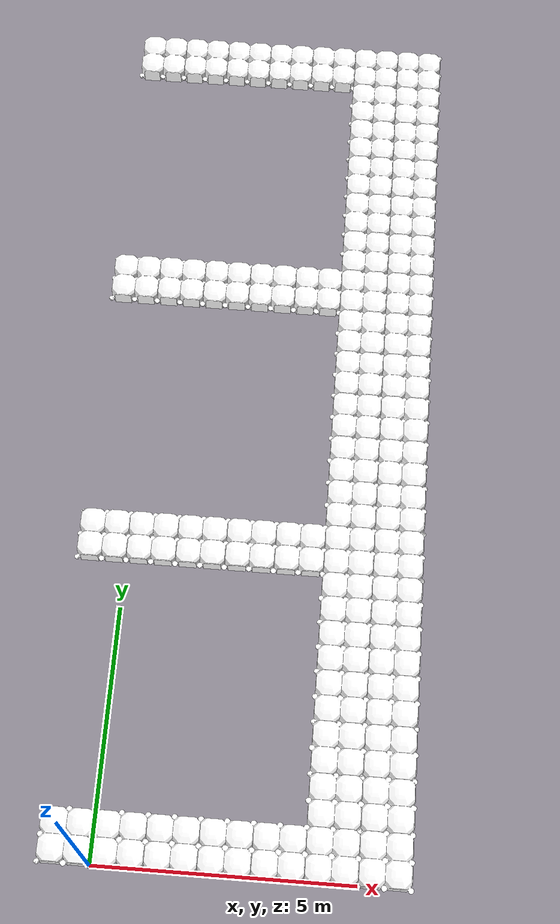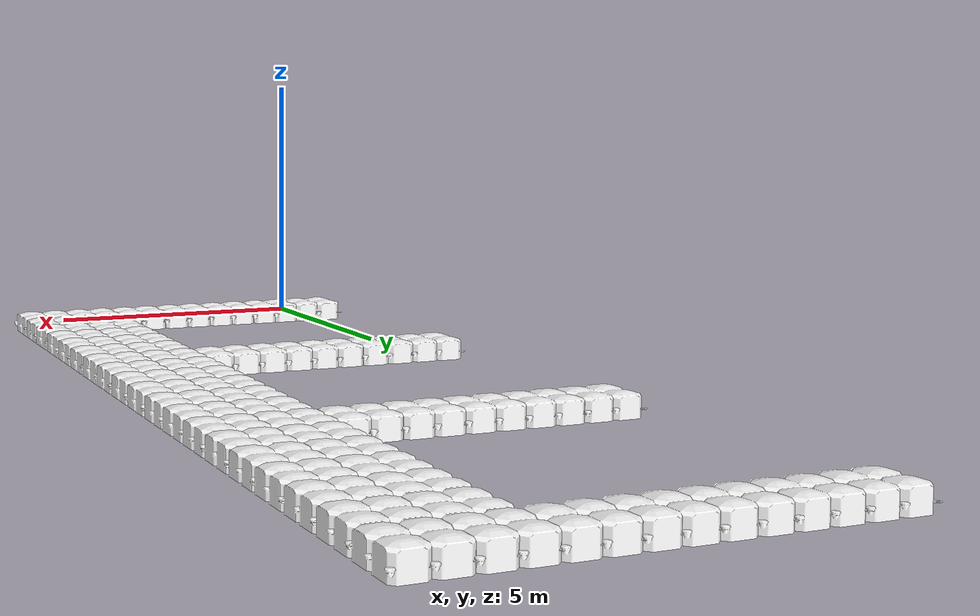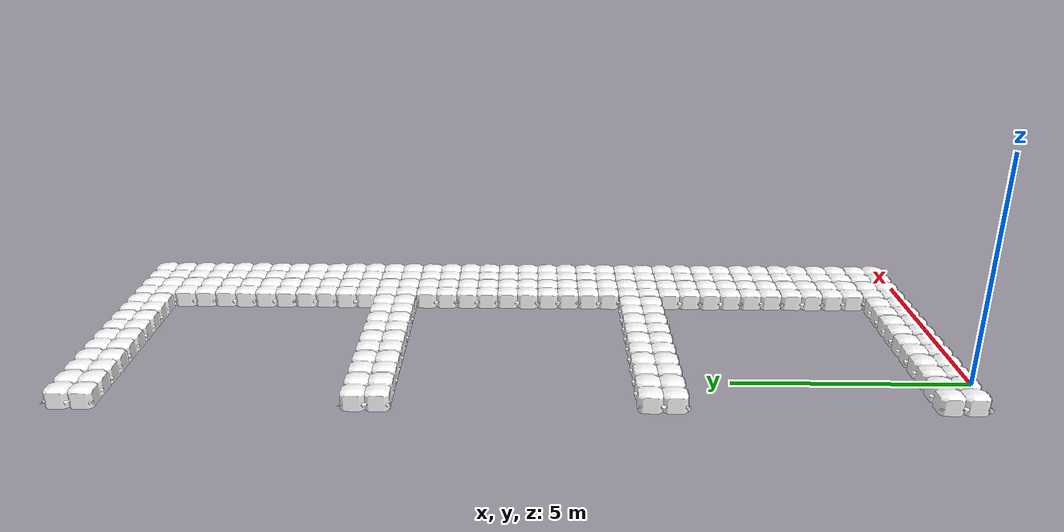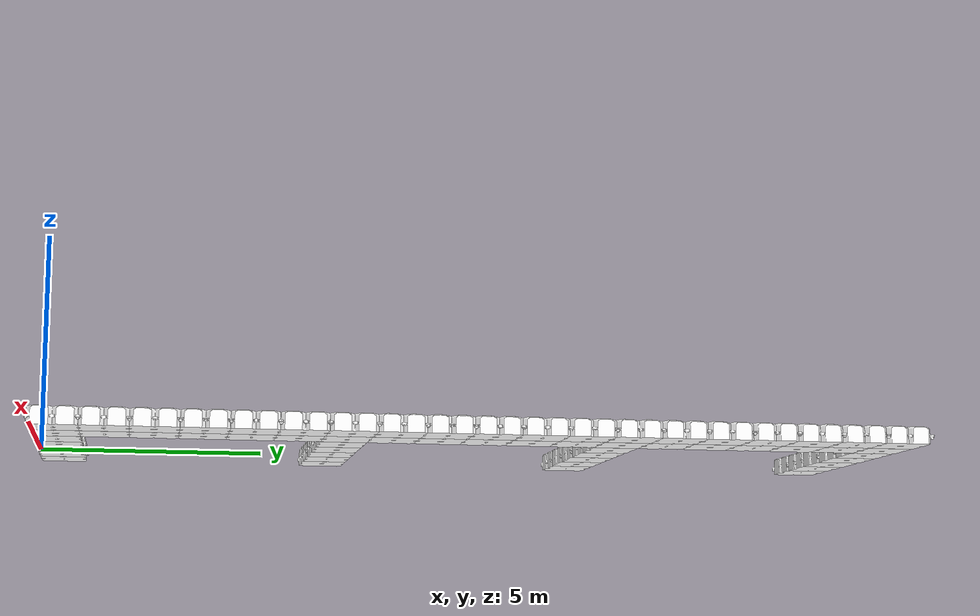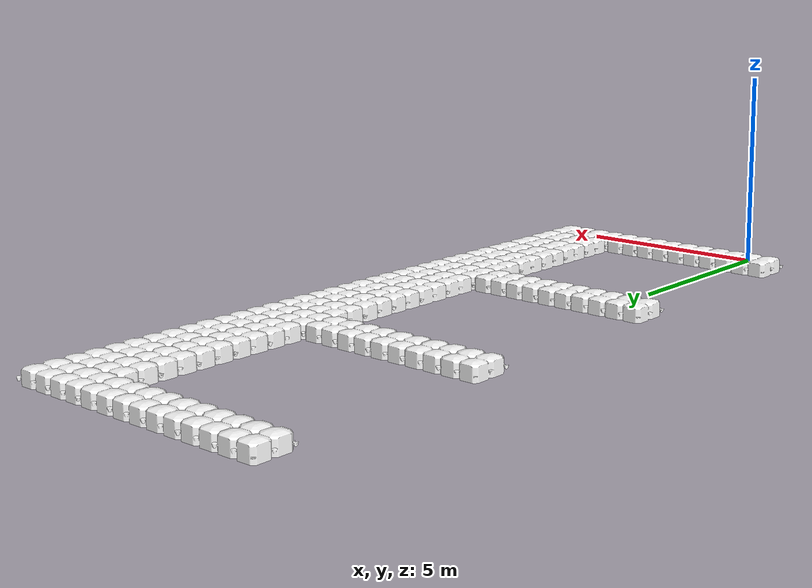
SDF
<?xml version="1.0" ?>
<sdf version="1.6">

  <!-- Important: This file is generated. DO NOT EDIT! -->

  <model name="robotx_dock_2024_base">
    <selfCollide>true</selfCollide>

    <static>true</static>

    <!-- Row 0 -->
    <include>
      <name>dock_block_0_0</name>
      <pose>0 0 0.25 0 0 0</pose>
      <uri>dock_block_2x2</uri>
    </include>
    <include>
      <name>dock_block_0_3</name>
      <pose>0 6 0.25 0 0 0</pose>
      <uri>dock_block_2x2</uri>
    </include>
    <include>
      <name>dock_block_0_6</name>
      <pose>0 12 0.25 0 0 0</pose>
      <uri>dock_block_2x2</uri>
    </include>
    <include>
      <name>dock_block_0_9</name>
      <pose>0 18 0.25 0 0 0</pose>
      <uri>dock_block_2x2</uri>
    </include>

    <!-- Row 1 -->
    <include>
      <name>dock_block_1_0</name>
      <pose>1 0 0.25 0 0 0</pose>
      <uri>dock_block_2x2</uri>
    </include>
    <include>
      <name>dock_block_1_3</name>
      <pose>1 6 0.25 0 0 0</pose>
      <uri>dock_block_2x2</uri>
    </include>
    <include>
      <name>dock_block_1_6</name>
      <pose>1 12 0.25 0 0 0</pose>
      <uri>dock_block_2x2</uri>
    </include>
    <include>
      <name>dock_block_1_9</name>
      <pose>1 18 0.25 0 0 0</pose>
      <uri>dock_block_2x2</uri>
    </include>

    <!-- Row 2 -->
    <include>
      <name>dock_block_2_0</name>
      <pose>2 0 0.25 0 0 0</pose>
      <uri>dock_block_2x2</uri>
    </include>
    <include>
      <name>dock_block_2_3</name>
      <pose>2 6 0.25 0 0 0</pose>
      <uri>dock_block_2x2</uri>
    </include>
    <include>
      <name>dock_block_2_6</name>
      <pose>2 12 0.25 0 0 0</pose>
      <uri>dock_block_2x2</uri>
    </include>
    <include>
      <name>dock_block_2_9</name>
      <pose>2 18 0.25 0 0 0</pose>
      <uri>dock_block_2x2</uri>
    </include>

    <!-- Row 3 -->
    <include>
      <name>dock_block_3_0</name>
      <pose>3 0 0.25 0 0 0</pose>
      <uri>dock_block_2x2</uri>
    </include>
    <include>
      <name>dock_block_3_3</name>
      <pose>3 6 0.25 0 0 0</pose>
      <uri>dock_block_2x2</uri>
    </include>
    <include>
      <name>dock_block_3_6</name>
      <pose>3 12 0.25 0 0 0</pose>
      <uri>dock_block_2x2</uri>
    </include>
    <include>
      <name>dock_block_3_9</name>
      <pose>3 18 0.25 0 0 0</pose>
      <uri>dock_block_2x2</uri>
    </include>

    <!-- Row 4 -->
    <include>
      <name>dock_block_4_0</name>
      <pose>4 0 0.25 0 0 0</pose>
      <uri>dock_block_2x2</uri>
    </include>
    <include>
      <name>dock_block_4_3</name>
      <pose>4 6 0.25 0 0 0</pose>
      <uri>dock_block_2x2</uri>
    </include>
    <include>
      <name>dock_block_4_6</name>
      <pose>4 12 0.25 0 0 0</pose>
      <uri>dock_block_2x2</uri>
    </include>
    <include>
      <name>dock_block_4_9</name>
      <pose>4 18 0.25 0 0 0</pose>
      <uri>dock_block_2x2</uri>
    </include>

    <!-- Row 5 -->
    <include>
      <name>dock_block_5_0</name>
      <pose>5 0 0.25 0 0 0</pose>
      <uri>dock_block_2x2</uri>
    </include>
    <include>
      <name>dock_block_5_1</name>
      <pose>5 1 0.25 0 0 0</pose>
      <uri>dock_block_2x2</uri>
    </include>
    <include>
      <name>dock_block_5_2</name>
      <pose>5 2 0.25 0 0 0</pose>
      <uri>dock_block_2x2</uri>
    </include>
    <include>
      <name>dock_block_5_3</name>
      <pose>5 3 0.25 0 0 0</pose>
      <uri>dock_block_2x2</uri>
    </include>
    <include>
      <name>dock_block_5_4</name>
      <pose>5 4 0.25 0 0 0</pose>
      <uri>dock_block_2x2</uri>
    </include>
    <include>
      <name>dock_block_5_5</name>
      <pose>5 5 0.25 0 0 0</pose>
      <uri>dock_block_2x2</uri>
    </include>
    <include>
      <name>dock_block_5_6</name>
      <pose>5 6 0.25 0 0 0</pose>
      <uri>dock_block_2x2</uri>
    </include>
    <include>
      <name>dock_block_5_7</name>
      <pose>5 7 0.25 0 0 0</pose>
      <uri>dock_block_2x2</uri>
    </include>
    <include>
      <name>dock_block_5_8</name>
      <pose>5 8 0.25 0 0 0</pose>
      <uri>dock_block_2x2</uri>
    </include>
    <include>
      <name>dock_block_5_9</name>
      <pose>5 9 0.25 0 0 0</pose>
      <uri>dock_block_2x2</uri>
    </include>
    <include>
      <name>dock_block_5_10</name>
      <pose>5 10 0.25 0 0 0</pose>
      <uri>dock_block_2x2</uri>
    </include>
    <include>
      <name>dock_block_5_11</name>
      <pose>5 11 0.25 0 0 0</pose>
      <uri>dock_block_2x2</uri>
    </include>
    <include>
      <name>dock_block_5_12</name>
      <pose>5 12 0.25 0 0 0</pose>
      <uri>dock_block_2x2</uri>
    </include>
    <include>
      <name>dock_block_5_13</name>
      <pose>5 13 0.25 0 0 0</pose>
      <uri>dock_block_2x2</uri>
    </include>
    <include>
      <name>dock_block_5_14</name>
      <pose>5 14 0.25 0 0 0</pose>
      <uri>dock_block_2x2</uri>
    </include>
    <include>
      <name>dock_block_5_15</name>
      <pose>5 15 0.25 0 0 0</pose>
      <uri>dock_block_2x2</uri>
    </include>
    <include>
      <name>dock_block_5_16</name>
      <pose>5 16 0.25 0 0 0</pose>
      <uri>dock_block_2x2</uri>
    </include>
    <include>
      <name>dock_block_5_17</name>
      <pose>5 17 0.25 0 0 0</pose>
      <uri>dock_block_2x2</uri>
    </include>
    <include>
      <name>dock_block_5_18</name>
      <pose>5 18 0.25 0 0 0</pose>
      <uri>dock_block_2x2</uri>
    </include>

    <!-- Row 6 -->
    <include>
      <name>dock_block_6_0</name>
      <pose>6 0 0.25 0 0 0</pose>
      <uri>dock_block_2x2</uri>
    </include>
    <include>
      <name>dock_block_6_1</name>
      <pose>6 1 0.25 0 0 0</pose>
      <uri>dock_block_2x2</uri>
    </include>
    <include>
      <name>dock_block_6_2</name>
      <pose>6 2 0.25 0 0 0</pose>
      <uri>dock_block_2x2</uri>
    </include>
    <include>
      <name>dock_block_6_3</name>
      <pose>6 3 0.25 0 0 0</pose>
      <uri>dock_block_2x2</uri>
    </include>
    <include>
      <name>dock_block_6_4</name>
      <pose>6 4 0.25 0 0 0</pose>
      <uri>dock_block_2x2</uri>
    </include>
    <include>
      <name>dock_block_6_5</name>
      <pose>6 5 0.25 0 0 0</pose>
      <uri>dock_block_2x2</uri>
    </include>
    <include>
      <name>dock_block_6_6</name>
      <pose>6 6 0.25 0 0 0</pose>
      <uri>dock_block_2x2</uri>
    </include>
    <include>
      <name>dock_block_6_7</name>
      <pose>6 7 0.25 0 0 0</pose>
      <uri>dock_block_2x2</uri>
    </include>
    <include>
      <name>dock_block_6_8</name>
      <pose>6 8 0.25 0 0 0</pose>
      <uri>dock_block_2x2</uri>
    </include>
    <include>
      <name>dock_block_6_9</name>
      <pose>6 9 0.25 0 0 0</pose>
      <uri>dock_block_2x2</uri>
    </include>
    <include>
      <name>dock_block_6_10</name>
      <pose>6 10 0.25 0 0 0</pose>
      <uri>dock_block_2x2</uri>
    </include>
    <include>
      <name>dock_block_6_11</name>
      <pose>6 11 0.25 0 0 0</pose>
      <uri>dock_block_2x2</uri>
    </include>
    <include>
      <name>dock_block_6_12</name>
      <pose>6 12 0.25 0 0 0</pose>
      <uri>dock_block_2x2</uri>
    </include>
    <include>
      <name>dock_block_6_13</name>
      <pose>6 13 0.25 0 0 0</pose>
      <uri>dock_block_2x2</uri>
    </include>
    <include>
      <name>dock_block_6_14</name>
      <pose>6 14 0.25 0 0 0</pose>
      <uri>dock_block_2x2</uri>
    </include>
    <include>
      <name>dock_block_6_15</name>
      <pose>6 15 0.25 0 0 0</pose>
      <uri>dock_block_2x2</uri>
    </include>
    <include>
      <name>dock_block_6_16</name>
      <pose>6 16 0.25 0 0 0</pose>
      <uri>dock_block_2x2</uri>
    </include>
    <include>
      <name>dock_block_6_17</name>
      <pose>6 17 0.25 0 0 0</pose>
      <uri>dock_block_2x2</uri>
    </include>
    <include>
      <name>dock_block_6_18</name>
      <pose>6 18 0.25 0 0 0</pose>
      <uri>dock_block_2x2</uri>
    </include>

  </model>
</sdf>

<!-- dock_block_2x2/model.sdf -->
<sdf version="1.5">
  <model name="dock_block_2x2">
    <static>true</static>
    <link name="link">
      <collision name="collision">
        <pose>0 0 0 0 0 0</pose>
        <geometry>
          <box>
            <size>1 1 0.4</size>
          </box>
        </geometry>
      </collision>
      <visual name="visual">
        <pose>-0.25 0.25 0.0 0 0 0 </pose>
        <geometry>
          <mesh>
            <uri>mesh/dock_block_2x2.dae</uri>
          </mesh>
        </geometry>
        <material>
          <diffuse>1.0 1.0 1.0</diffuse>
          <specular>1.0 1.0 1.0</specular>
          <pbr>
            <metal>
              <albedo_map>file://dock_block_2x2/mesh/DockCubes_Albedo.png</albedo_map>
              <normal_map>file://dock_block_2x2/mesh/DockCubes_Normal.png</normal_map>
              <roughness_map>file://dock_block_2x2/mesh/DockCubes_Roughness.png</roughness_map>
              <metalness_map>file://dock_block_2x2/mesh/DockCubes_Metalness.png</metalness_map>
            </metal>
          </pbr>
        </material>
      </visual>
    </link>
  </model>
</sdf>
